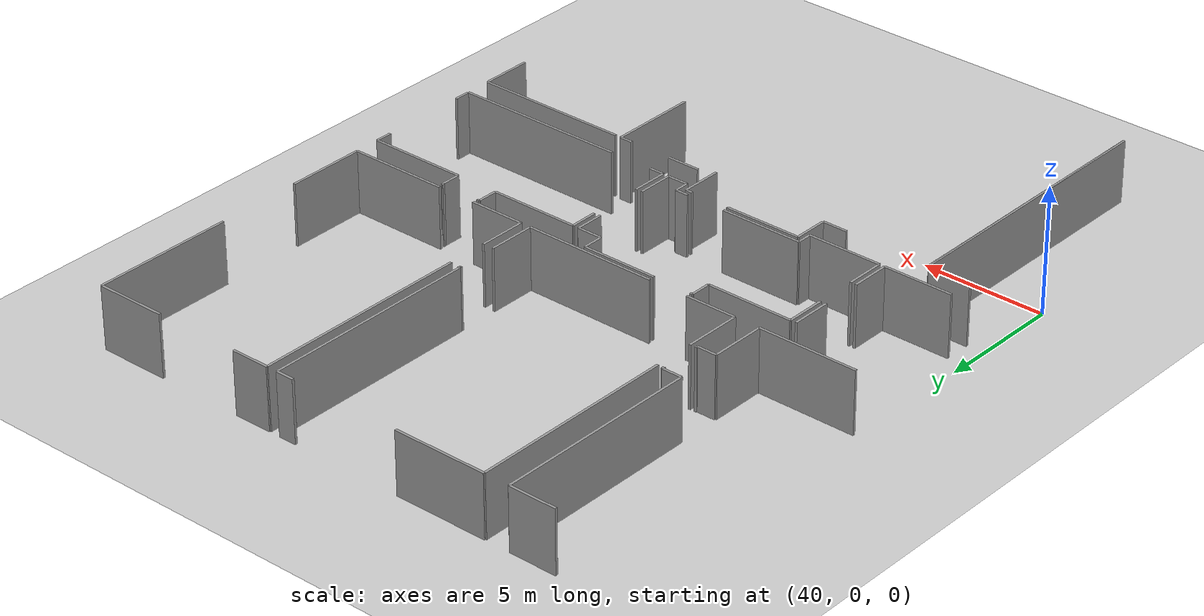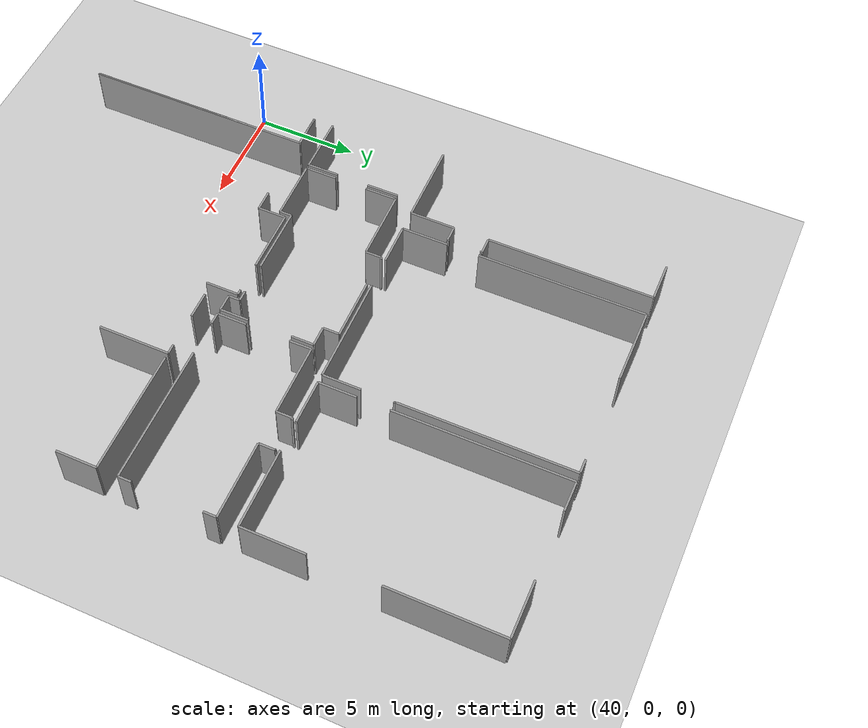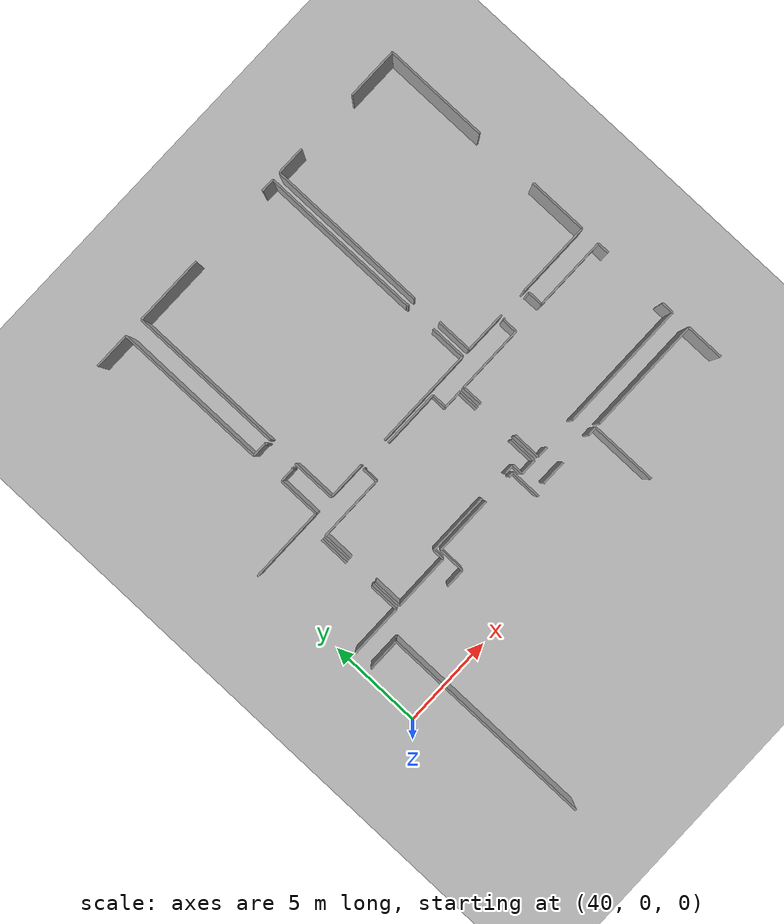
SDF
<sdf version="1.6">
 <world name="default">
  <model name="ground_plane">
   <static>1</static>
   <link name="link">
    <collision name="collision">
     <geometry><plane><normal>0 0 1</normal><size>100 100</size></plane></geometry>
     <surface><friction><ode><mu>100</mu><mu2>50</mu2></ode></friction></surface>
    </collision>
    <visual name="visual">
     <cast_shadows>0</cast_shadows>
     <geometry><plane><normal>0 0 1</normal><size>100 100</size></plane></geometry>
     <material>
      <script><uri>file://media/materials/scripts/gazebo.material</uri><name>Gazebo/Grey</name></script>
     </material>
    </visual>
   </link>
  </model>
  <model name="50010540">
   <static>1</static>
   <link name="Wall_172">
    <collision name="Wall_172_Collision">
     <geometry><box><size>1.92822233662 0.1 2.5</size></box></geometry>
     <pose>0.96411116831 0 1.25 0 0 0</pose>
    </collision>
    <visual name="Wall_172_Visual">
     <pose>0.96411116831 0 1.25 0 0 0</pose>
     <geometry><box><size>1.92822233662 0.1 2.5</size></box></geometry>
     <material>
      <script><uri>file://media/materials/scripts/gazebo.material</uri><name>Gazebo/Grey</name></script>
      <ambient>1 1 1 1</ambient>
     </material>
    </visual>
    <pose>104.788143403 -0.456443402162 0 0 0 0.0</pose>
   </link>
   <link name="Wall_173">
    <collision name="Wall_173_Collision">
     <geometry><box><size>8.22259083427 0.1 2.5</size></box></geometry>
     <pose>4.11129541714 0 1.25 0 0 0</pose>
    </collision>
    <visual name="Wall_173_Visual">
     <pose>4.11129541714 0 1.25 0 0 0</pose>
     <geometry><box><size>8.22259083427 0.1 2.5</size></box></geometry>
     <material>
      <script><uri>file://media/materials/scripts/gazebo.material</uri><name>Gazebo/Grey</name></script>
      <ambient>1 1 1 1</ambient>
     </material>
    </visual>
    <pose>106.716365739 -0.456443402162 0 0 0 -1.57079632679</pose>
   </link>
   <link name="Wall_174">
    <collision name="Wall_174_Collision">
     <geometry><box><size>0.808404354706 0.1 2.5</size></box></geometry>
     <pose>0.404202177353 0 1.25 0 0 0</pose>
    </collision>
    <visual name="Wall_174_Visual">
     <pose>0.404202177353 0 1.25 0 0 0</pose>
     <geometry><box><size>0.808404354706 0.1 2.5</size></box></geometry>
     <material>
      <script><uri>file://media/materials/scripts/gazebo.material</uri><name>Gazebo/Grey</name></script>
      <ambient>1 1 1 1</ambient>
     </material>
    </visual>
    <pose>106.716365739 -8.67903423643 0 0 0 0.0</pose>
   </link>
   <link name="Wall_175">
    <collision name="Wall_175_Collision">
     <geometry><box><size>0.0997794683089 0.1 2.5</size></box></geometry>
     <pose>0.0498897341544 0 1.25 0 0 0</pose>
    </collision>
    <visual name="Wall_175_Visual">
     <pose>0.0498897341544 0 1.25 0 0 0</pose>
     <geometry><box><size>0.0997794683089 0.1 2.5</size></box></geometry>
     <material>
      <script><uri>file://media/materials/scripts/gazebo.material</uri><name>Gazebo/Grey</name></script>
      <ambient>1 1 1 1</ambient>
     </material>
    </visual>
    <pose>107.524770094 -8.67903423643 0 0 0 -1.57079632679</pose>
   </link>
   <link name="Wall_176">
    <collision name="Wall_176_Collision">
     <geometry><box><size>0.0845265559559 0.1 2.5</size></box></geometry>
     <pose>0.042263277978 0 1.25 0 0 0</pose>
    </collision>
    <visual name="Wall_176_Visual">
     <pose>0.042263277978 0 1.25 0 0 0</pose>
     <geometry><box><size>0.0845265559559 0.1 2.5</size></box></geometry>
     <material>
      <script><uri>file://media/materials/scripts/gazebo.material</uri><name>Gazebo/Grey</name></script>
      <ambient>1 1 1 1</ambient>
     </material>
    </visual>
    <pose>107.524770094 -10.3604136081 0 0 0 -1.57079632679</pose>
   </link>
   <link name="Wall_177">
    <collision name="Wall_177_Collision">
     <geometry><box><size>0.793151442354 0.1 2.5</size></box></geometry>
     <pose>0.396575721177 0 1.25 0 0 0</pose>
    </collision>
    <visual name="Wall_177_Visual">
     <pose>0.396575721177 0 1.25 0 0 0</pose>
     <geometry><box><size>0.793151442354 0.1 2.5</size></box></geometry>
     <material>
      <script><uri>file://media/materials/scripts/gazebo.material</uri><name>Gazebo/Grey</name></script>
      <ambient>1 1 1 1</ambient>
     </material>
    </visual>
    <pose>107.524770094 -10.4449401641 0 0 0 3.14159265359</pose>
   </link>
   <link name="Wall_178">
    <collision name="Wall_178_Collision">
     <geometry><box><size>2.21434155084 0.1 2.5</size></box></geometry>
     <pose>1.10717077542 0 1.25 0 0 0</pose>
    </collision>
    <visual name="Wall_178_Visual">
     <pose>1.10717077542 0 1.25 0 0 0</pose>
     <geometry><box><size>2.21434155084 0.1 2.5</size></box></geometry>
     <material>
      <script><uri>file://media/materials/scripts/gazebo.material</uri><name>Gazebo/Grey</name></script>
      <ambient>1 1 1 1</ambient>
     </material>
    </visual>
    <pose>106.731618652 -10.4449401641 0 0 0 -1.57079632679</pose>
   </link>
   <link name="Wall_179">
    <collision name="Wall_179_Collision">
     <geometry><box><size>4.01011776519 0.1 2.5</size></box></geometry>
     <pose>2.0050588826 0 1.25 0 0 0</pose>
    </collision>
    <visual name="Wall_179_Visual">
     <pose>2.0050588826 0 1.25 0 0 0</pose>
     <geometry><box><size>4.01011776519 0.1 2.5</size></box></geometry>
     <material>
      <script><uri>file://media/materials/scripts/gazebo.material</uri><name>Gazebo/Grey</name></script>
      <ambient>1 1 1 1</ambient>
     </material>
    </visual>
    <pose>106.731618652 -12.6592817149 0 0 0 3.14159265359</pose>
   </link>
   <link name="Wall_193">
    <collision name="Wall_193_Collision">
     <geometry><box><size>1.58668420752 0.1 2.5</size></box></geometry>
     <pose>0.793342103758 0 1.25 0 0 0</pose>
    </collision>
    <visual name="Wall_193_Visual">
     <pose>0.793342103758 0 1.25 0 0 0</pose>
     <geometry><box><size>1.58668420752 0.1 2.5</size></box></geometry>
     <material>
      <script><uri>file://media/materials/scripts/gazebo.material</uri><name>Gazebo/Grey</name></script>
      <ambient>1 1 1 1</ambient>
     </material>
    </visual>
    <pose>106.023629303 -13.6954628941 0 0 0 -1.57079632679</pose>
   </link>
   <link name="Wall_194">
    <collision name="Wall_194_Collision">
     <geometry><box><size>1.57219394078 0.1 2.5</size></box></geometry>
     <pose>0.78609697039 0 1.25 0 0 0</pose>
    </collision>
    <visual name="Wall_194_Visual">
     <pose>0.78609697039 0 1.25 0 0 0</pose>
     <geometry><box><size>1.57219394078 0.1 2.5</size></box></geometry>
     <material>
      <script><uri>file://media/materials/scripts/gazebo.material</uri><name>Gazebo/Grey</name></script>
      <ambient>1 1 1 1</ambient>
     </material>
    </visual>
    <pose>106.023629303 -16.8876432344 0 0 0 -1.57079632679</pose>
   </link>
   <link name="Wall_195">
    <collision name="Wall_195_Collision">
     <geometry><box><size>2.79738412553 0.1 2.5</size></box></geometry>
     <pose>1.39869206277 0 1.25 0 0 0</pose>
    </collision>
    <visual name="Wall_195_Visual">
     <pose>1.39869206277 0 1.25 0 0 0</pose>
     <geometry><box><size>2.79738412553 0.1 2.5</size></box></geometry>
     <material>
      <script><uri>file://media/materials/scripts/gazebo.material</uri><name>Gazebo/Grey</name></script>
      <ambient>1 1 1 1</ambient>
     </material>
    </visual>
    <pose>106.023629303 -18.4598371752 0 0 0 3.14159265359</pose>
   </link>
   <link name="Wall_199">
    <collision name="Wall_199_Collision">
     <geometry><box><size>3.77509580736 0.1 2.5</size></box></geometry>
     <pose>1.88754790368 0 1.25 0 0 0</pose>
    </collision>
    <visual name="Wall_199_Visual">
     <pose>1.88754790368 0 1.25 0 0 0</pose>
     <geometry><box><size>3.77509580736 0.1 2.5</size></box></geometry>
     <material>
      <script><uri>file://media/materials/scripts/gazebo.material</uri><name>Gazebo/Grey</name></script>
      <ambient>1 1 1 1</ambient>
     </material>
    </visual>
    <pose>107.761190236 -0.458731339015 0 0 0 0.0</pose>
   </link>
   <link name="Wall_200">
    <collision name="Wall_200_Collision">
     <geometry><box><size>0.724513336765 0.1 2.5</size></box></geometry>
     <pose>0.362256668383 0 1.25 0 0 0</pose>
    </collision>
    <visual name="Wall_200_Visual">
     <pose>0.362256668383 0 1.25 0 0 0</pose>
     <geometry><box><size>0.724513336765 0.1 2.5</size></box></geometry>
     <material>
      <script><uri>file://media/materials/scripts/gazebo.material</uri><name>Gazebo/Grey</name></script>
      <ambient>1 1 1 1</ambient>
     </material>
    </visual>
    <pose>116.068943164 -0.458731339015 0 0 0 0.0</pose>
   </link>
   <link name="Wall_201">
    <collision name="Wall_201_Collision">
     <geometry><box><size>8.61637018818 0.1 2.5</size></box></geometry>
     <pose>4.30818509409 0 1.25 0 0 0</pose>
    </collision>
    <visual name="Wall_201_Visual">
     <pose>4.30818509409 0 1.25 0 0 0</pose>
     <geometry><box><size>8.61637018818 0.1 2.5</size></box></geometry>
     <material>
      <script><uri>file://media/materials/scripts/gazebo.material</uri><name>Gazebo/Grey</name></script>
      <ambient>1 1 1 1</ambient>
     </material>
    </visual>
    <pose>116.793456501 -0.458731339015 0 0 0 -1.57079632679</pose>
   </link>
   <link name="Wall_202">
    <collision name="Wall_202_Collision">
     <geometry><box><size>0.0190661404412 0.1 2.5</size></box></geometry>
     <pose>0.00953307022058 0 1.25 0 0 0</pose>
    </collision>
    <visual name="Wall_202_Visual">
     <pose>0.00953307022058 0 1.25 0 0 0</pose>
     <geometry><box><size>0.0190661404412 0.1 2.5</size></box></geometry>
     <material>
      <script><uri>file://media/materials/scripts/gazebo.material</uri><name>Gazebo/Grey</name></script>
      <ambient>1 1 1 1</ambient>
     </material>
    </visual>
    <pose>116.793456501 -9.0751015272 0 0 0 0.0</pose>
   </link>
   <link name="Wall_203">
    <collision name="Wall_203_Collision">
     <geometry><box><size>0.109312538529 0.1 2.5</size></box></geometry>
     <pose>0.0546562692647 0 1.25 0 0 0</pose>
    </collision>
    <visual name="Wall_203_Visual">
     <pose>0.0546562692647 0 1.25 0 0 0</pose>
     <geometry><box><size>0.109312538529 0.1 2.5</size></box></geometry>
     <material>
      <script><uri>file://media/materials/scripts/gazebo.material</uri><name>Gazebo/Grey</name></script>
      <ambient>1 1 1 1</ambient>
     </material>
    </visual>
    <pose>116.812522641 -9.0751015272 0 0 0 -1.57079632679</pose>
   </link>
   <link name="Wall_204">
    <collision name="Wall_204_Collision">
     <geometry><box><size>1.89644543588 0.1 2.5</size></box></geometry>
     <pose>0.948222717942 0 1.25 0 0 0</pose>
    </collision>
    <visual name="Wall_204_Visual">
     <pose>0.948222717942 0 1.25 0 0 0</pose>
     <geometry><box><size>1.89644543588 0.1 2.5</size></box></geometry>
     <material>
      <script><uri>file://media/materials/scripts/gazebo.material</uri><name>Gazebo/Grey</name></script>
      <ambient>1 1 1 1</ambient>
     </material>
    </visual>
    <pose>116.812522641 -10.7591501586 0 0 0 -1.57079632679</pose>
   </link>
   <link name="Wall_205">
    <collision name="Wall_205_Collision">
     <geometry><box><size>5.37919375647 0.1 2.5</size></box></geometry>
     <pose>2.68959687824 0 1.25 0 0 0</pose>
    </collision>
    <visual name="Wall_205_Visual">
     <pose>2.68959687824 0 1.25 0 0 0</pose>
     <geometry><box><size>5.37919375647 0.1 2.5</size></box></geometry>
     <material>
      <script><uri>file://media/materials/scripts/gazebo.material</uri><name>Gazebo/Grey</name></script>
      <ambient>1 1 1 1</ambient>
     </material>
    </visual>
    <pose>116.812522641 -12.6555955945 0 0 0 3.14159265359</pose>
   </link>
   <link name="Wall_206">
    <collision name="Wall_206_Collision">
     <geometry><box><size>2.05914316765 0.1 2.5</size></box></geometry>
     <pose>1.02957158382 0 1.25 0 0 0</pose>
    </collision>
    <visual name="Wall_206_Visual">
     <pose>1.02957158382 0 1.25 0 0 0</pose>
     <geometry><box><size>2.05914316765 0.1 2.5</size></box></geometry>
     <material>
      <script><uri>file://media/materials/scripts/gazebo.material</uri><name>Gazebo/Grey</name></script>
      <ambient>1 1 1 1</ambient>
     </material>
    </visual>
    <pose>109.831773088 -12.6555955945 0 0 0 3.14159265359</pose>
   </link>
   <link name="Wall_207">
    <collision name="Wall_207_Collision">
     <geometry><box><size>2.30306265769 0.1 2.5</size></box></geometry>
     <pose>1.15153132885 0 1.25 0 0 0</pose>
    </collision>
    <visual name="Wall_207_Visual">
     <pose>1.15153132885 0 1.25 0 0 0</pose>
     <geometry><box><size>2.30306265769 0.1 2.5</size></box></geometry>
     <material>
      <script><uri>file://media/materials/scripts/gazebo.material</uri><name>Gazebo/Grey</name></script>
      <ambient>1 1 1 1</ambient>
     </material>
    </visual>
    <pose>107.77262992 -12.6555955945 0 0 0 1.57079632679</pose>
   </link>
   <link name="Wall_208">
    <collision name="Wall_208_Collision">
     <geometry><box><size>8.29454162624 0.1 2.5</size></box></geometry>
     <pose>4.14727081312 0 1.25 0 0 0</pose>
    </collision>
    <visual name="Wall_208_Visual">
     <pose>4.14727081312 0 1.25 0 0 0</pose>
     <geometry><box><size>8.29454162624 0.1 2.5</size></box></geometry>
     <material>
      <script><uri>file://media/materials/scripts/gazebo.material</uri><name>Gazebo/Grey</name></script>
      <ambient>1 1 1 1</ambient>
     </material>
    </visual>
    <pose>107.77262992 -8.75326507655 0 0 0 1.57217550944</pose>
   </link>
   <link name="Wall_209">
    <collision name="Wall_209_Collision">
     <geometry><box><size>1.90470743007 0.1 2.5</size></box></geometry>
     <pose>0.952353715037 0 1.25 0 0 0</pose>
    </collision>
    <visual name="Wall_209_Visual">
     <pose>0.952353715037 0 1.25 0 0 0</pose>
     <geometry><box><size>1.90470743007 0.1 2.5</size></box></geometry>
     <material>
      <script><uri>file://media/materials/scripts/gazebo.material</uri><name>Gazebo/Grey</name></script>
      <ambient>1 1 1 1</ambient>
     </material>
    </visual>
    <pose>117.244688491 -12.6576293161 0 0 0 1.57079632679</pose>
   </link>
   <link name="Wall_210">
    <collision name="Wall_210_Collision">
     <geometry><box><size>8.70420154182 0.1 2.5</size></box></geometry>
     <pose>4.35210077091 0 1.25 0 0 0</pose>
    </collision>
    <visual name="Wall_210_Visual">
     <pose>4.35210077091 0 1.25 0 0 0</pose>
     <geometry><box><size>8.70420154182 0.1 2.5</size></box></geometry>
     <material>
      <script><uri>file://media/materials/scripts/gazebo.material</uri><name>Gazebo/Grey</name></script>
      <ambient>1 1 1 1</ambient>
     </material>
    </visual>
    <pose>117.244688491 -9.15645039308 0 0 0 1.57079632679</pose>
   </link>
   <link name="Wall_211">
    <collision name="Wall_211_Collision">
     <geometry><box><size>1.52910446338 0.1 2.5</size></box></geometry>
     <pose>0.764552231692 0 1.25 0 0 0</pose>
    </collision>
    <visual name="Wall_211_Visual">
     <pose>0.764552231692 0 1.25 0 0 0</pose>
     <geometry><box><size>1.52910446338 0.1 2.5</size></box></geometry>
     <material>
      <script><uri>file://media/materials/scripts/gazebo.material</uri><name>Gazebo/Grey</name></script>
      <ambient>1 1 1 1</ambient>
     </material>
    </visual>
    <pose>117.244688491 -0.452248851265 0 0 0 0.0</pose>
   </link>
   <link name="Wall_212">
    <collision name="Wall_212_Collision">
     <geometry><box><size>2.79890941677 0.1 2.5</size></box></geometry>
     <pose>1.39945470838 0 1.25 0 0 0</pose>
    </collision>
    <visual name="Wall_212_Visual">
     <pose>1.39945470838 0 1.25 0 0 0</pose>
     <geometry><box><size>2.79890941677 0.1 2.5</size></box></geometry>
     <material>
      <script><uri>file://media/materials/scripts/gazebo.material</uri><name>Gazebo/Grey</name></script>
      <ambient>1 1 1 1</ambient>
     </material>
    </visual>
    <pose>122.236204059 -0.452248851265 0 0 0 0.0</pose>
   </link>
   <link name="Wall_213">
    <collision name="Wall_213_Collision">
     <geometry><box><size>5.63442582318 0.1 2.5</size></box></geometry>
     <pose>2.81721291159 0 1.25 0 0 0</pose>
    </collision>
    <visual name="Wall_213_Visual">
     <pose>2.81721291159 0 1.25 0 0 0</pose>
     <geometry><box><size>5.63442582318 0.1 2.5</size></box></geometry>
     <material>
      <script><uri>file://media/materials/scripts/gazebo.material</uri><name>Gazebo/Grey</name></script>
      <ambient>1 1 1 1</ambient>
     </material>
    </visual>
    <pose>125.035113475 -0.452248851265 0 0 0 -1.57079632679</pose>
   </link>
   <link name="Wall_214">
    <collision name="Wall_214_Collision">
     <geometry><box><size>3.15074326171 0.1 2.5</size></box></geometry>
     <pose>1.57537163085 0 1.25 0 0 0</pose>
    </collision>
    <visual name="Wall_214_Visual">
     <pose>1.57537163085 0 1.25 0 0 0</pose>
     <geometry><box><size>3.15074326171 0.1 2.5</size></box></geometry>
     <material>
      <script><uri>file://media/materials/scripts/gazebo.material</uri><name>Gazebo/Grey</name></script>
      <ambient>1 1 1 1</ambient>
     </material>
    </visual>
    <pose>125.035113475 -9.5115890357 0 0 0 -1.57079632679</pose>
   </link>
   <link name="Wall_215">
    <collision name="Wall_215_Collision">
     <geometry><box><size>3.98736550427 0.1 2.5</size></box></geometry>
     <pose>1.99368275213 0 1.25 0 0 0</pose>
    </collision>
    <visual name="Wall_215_Visual">
     <pose>1.99368275213 0 1.25 0 0 0</pose>
     <geometry><box><size>3.98736550427 0.1 2.5</size></box></geometry>
     <material>
      <script><uri>file://media/materials/scripts/gazebo.material</uri><name>Gazebo/Grey</name></script>
      <ambient>1 1 1 1</ambient>
     </material>
    </visual>
    <pose>125.035113475 -12.6623322974 0 0 0 3.14159265359</pose>
   </link>
   <link name="Wall_216">
    <collision name="Wall_216_Collision">
     <geometry><box><size>2.22693016957 0.1 2.5</size></box></geometry>
     <pose>1.11346508479 0 1.25 0 0 0</pose>
    </collision>
    <visual name="Wall_216_Visual">
     <pose>1.11346508479 0 1.25 0 0 0</pose>
     <geometry><box><size>2.22693016957 0.1 2.5</size></box></geometry>
     <material>
      <script><uri>file://media/materials/scripts/gazebo.material</uri><name>Gazebo/Grey</name></script>
      <ambient>1 1 1 1</ambient>
     </material>
    </visual>
    <pose>119.471613695 -12.6623322974 0 0 0 3.13948078458</pose>
   </link>
   <link name="Wall_217">
    <collision name="Wall_217_Collision">
     <geometry><box><size>1.57689692209 0.1 2.5</size></box></geometry>
     <pose>0.788448461045 0 1.25 0 0 0</pose>
    </collision>
    <visual name="Wall_217_Visual">
     <pose>0.788448461045 0 1.25 0 0 0</pose>
     <geometry><box><size>1.57689692209 0.1 2.5</size></box></geometry>
     <material>
      <script><uri>file://media/materials/scripts/gazebo.material</uri><name>Gazebo/Grey</name></script>
      <ambient>1 1 1 1</ambient>
     </material>
    </visual>
    <pose>106.252422989 -18.461489574 0 0 0 1.57079632679</pose>
   </link>
   <link name="Wall_218">
    <collision name="Wall_218_Collision">
     <geometry><box><size>1.58350651744 0.1 2.5</size></box></geometry>
     <pose>0.791753258721 0 1.25 0 0 0</pose>
    </collision>
    <visual name="Wall_218_Visual">
     <pose>0.791753258721 0 1.25 0 0 0</pose>
     <geometry><box><size>1.58350651744 0.1 2.5</size></box></geometry>
     <material>
      <script><uri>file://media/materials/scripts/gazebo.material</uri><name>Gazebo/Grey</name></script>
      <ambient>1 1 1 1</ambient>
     </material>
    </visual>
    <pose>106.252422989 -15.2759188291 0 0 0 1.57079632679</pose>
   </link>
   <link name="Wall_219">
    <collision name="Wall_219_Collision">
     <geometry><box><size>3.50435661309 0.1 2.5</size></box></geometry>
     <pose>1.75217830655 0 1.25 0 0 0</pose>
    </collision>
    <visual name="Wall_219_Visual">
     <pose>1.75217830655 0 1.25 0 0 0</pose>
     <geometry><box><size>3.50435661309 0.1 2.5</size></box></geometry>
     <material>
      <script><uri>file://media/materials/scripts/gazebo.material</uri><name>Gazebo/Grey</name></script>
      <ambient>1 1 1 1</ambient>
     </material>
    </visual>
    <pose>106.252422989 -13.6924123116 0 0 0 0.0</pose>
   </link>
   <link name="Wall_220">
    <collision name="Wall_220_Collision">
     <geometry><box><size>0.816920564104 0.1 2.5</size></box></geometry>
     <pose>0.408460282052 0 1.25 0 0 0</pose>
    </collision>
    <visual name="Wall_220_Visual">
     <pose>0.408460282052 0 1.25 0 0 0</pose>
     <geometry><box><size>0.816920564104 0.1 2.5</size></box></geometry>
     <material>
      <script><uri>file://media/materials/scripts/gazebo.material</uri><name>Gazebo/Grey</name></script>
      <ambient>1 1 1 1</ambient>
     </material>
    </visual>
    <pose>109.756779602 -13.6924123116 0 0 0 1.57079632679</pose>
   </link>
   <link name="Wall_221">
    <collision name="Wall_221_Collision">
     <geometry><box><size>0.102957158382 0.1 2.5</size></box></geometry>
     <pose>0.0514785791912 0 1.25 0 0 0</pose>
    </collision>
    <visual name="Wall_221_Visual">
     <pose>0.0514785791912 0 1.25 0 0 0</pose>
     <geometry><box><size>0.102957158382 0.1 2.5</size></box></geometry>
     <material>
      <script><uri>file://media/materials/scripts/gazebo.material</uri><name>Gazebo/Grey</name></script>
      <ambient>1 1 1 1</ambient>
     </material>
    </visual>
    <pose>109.756779602 -12.8754917475 0 0 0 0.0</pose>
   </link>
   <link name="Wall_222">
    <collision name="Wall_222_Collision">
     <geometry><box><size>3.06329323088 0.1 2.5</size></box></geometry>
     <pose>1.53164661544 0 1.25 0 0 0</pose>
    </collision>
    <visual name="Wall_222_Visual">
     <pose>1.53164661544 0 1.25 0 0 0</pose>
     <geometry><box><size>3.06329323088 0.1 2.5</size></box></geometry>
     <material>
      <script><uri>file://media/materials/scripts/gazebo.material</uri><name>Gazebo/Grey</name></script>
      <ambient>1 1 1 1</ambient>
     </material>
    </visual>
    <pose>111.454937177 -12.8754917475 0 0 0 0.0</pose>
   </link>
   <link name="Wall_223">
    <collision name="Wall_223_Collision">
     <geometry><box><size>0.816539241295 0.1 2.5</size></box></geometry>
     <pose>0.408269620647 0 1.25 0 0 0</pose>
    </collision>
    <visual name="Wall_223_Visual">
     <pose>0.408269620647 0 1.25 0 0 0</pose>
     <geometry><box><size>0.816539241295 0.1 2.5</size></box></geometry>
     <material>
      <script><uri>file://media/materials/scripts/gazebo.material</uri><name>Gazebo/Grey</name></script>
      <ambient>1 1 1 1</ambient>
     </material>
    </visual>
    <pose>114.518230408 -12.8754917475 0 0 0 -1.57079632679</pose>
   </link>
   <link name="Wall_224">
    <collision name="Wall_224_Collision">
     <geometry><box><size>1.00160791118 0.1 2.5</size></box></geometry>
     <pose>0.500803955589 0 1.25 0 0 0</pose>
    </collision>
    <visual name="Wall_224_Visual">
     <pose>0.500803955589 0 1.25 0 0 0</pose>
     <geometry><box><size>1.00160791118 0.1 2.5</size></box></geometry>
     <material>
      <script><uri>file://media/materials/scripts/gazebo.material</uri><name>Gazebo/Grey</name></script>
      <ambient>1 1 1 1</ambient>
     </material>
    </visual>
    <pose>114.518230408 -13.6920309888 0 0 0 0.0</pose>
   </link>
   <link name="Wall_225">
    <collision name="Wall_225_Collision">
     <geometry><box><size>1.12515650124 0.1 2.5</size></box></geometry>
     <pose>0.562578250618 0 1.25 0 0 0</pose>
    </collision>
    <visual name="Wall_225_Visual">
     <pose>0.562578250618 0 1.25 0 0 0</pose>
     <geometry><box><size>1.12515650124 0.1 2.5</size></box></geometry>
     <material>
      <script><uri>file://media/materials/scripts/gazebo.material</uri><name>Gazebo/Grey</name></script>
      <ambient>1 1 1 1</ambient>
     </material>
    </visual>
    <pose>115.519838319 -13.6920309888 0 0 0 -1.57079632679</pose>
   </link>
   <link name="Wall_226">
    <collision name="Wall_226_Collision">
     <geometry><box><size>1.44470501503 0.1 2.5</size></box></geometry>
     <pose>0.722352507515 0 1.25 0 0 0</pose>
    </collision>
    <visual name="Wall_226_Visual">
     <pose>0.722352507515 0 1.25 0 0 0</pose>
     <geometry><box><size>1.44470501503 0.1 2.5</size></box></geometry>
     <material>
      <script><uri>file://media/materials/scripts/gazebo.material</uri><name>Gazebo/Grey</name></script>
      <ambient>1 1 1 1</ambient>
     </material>
    </visual>
    <pose>115.519838319 -16.9982268489 0 0 0 -1.57079632679</pose>
   </link>
   <link name="Wall_227">
    <collision name="Wall_227_Collision">
     <geometry><box><size>0.833825875295 0.1 2.5</size></box></geometry>
     <pose>0.416912937647 0 1.25 0 0 0</pose>
    </collision>
    <visual name="Wall_227_Visual">
     <pose>0.416912937647 0 1.25 0 0 0</pose>
     <geometry><box><size>0.833825875295 0.1 2.5</size></box></geometry>
     <material>
      <script><uri>file://media/materials/scripts/gazebo.material</uri><name>Gazebo/Grey</name></script>
      <ambient>1 1 1 1</ambient>
     </material>
    </visual>
    <pose>115.519838319 -18.442931864 0 0 0 3.14159265359</pose>
   </link>
   <link name="Wall_228">
    <collision name="Wall_228_Collision">
     <geometry><box><size>0.578085378177 0.1 2.5</size></box></geometry>
     <pose>0.289042689088 0 1.25 0 0 0</pose>
    </collision>
    <visual name="Wall_228_Visual">
     <pose>0.289042689088 0 1.25 0 0 0</pose>
     <geometry><box><size>0.578085378177 0.1 2.5</size></box></geometry>
     <material>
      <script><uri>file://media/materials/scripts/gazebo.material</uri><name>Gazebo/Grey</name></script>
      <ambient>1 1 1 1</ambient>
     </material>
    </visual>
    <pose>114.686012444 -18.442931864 0 0 0 1.57079632679</pose>
   </link>
   <link name="Wall_229">
    <collision name="Wall_229_Collision">
     <geometry><box><size>0.537665160442 0.1 2.5</size></box></geometry>
     <pose>0.268832580221 0 1.25 0 0 0</pose>
    </collision>
    <visual name="Wall_229_Visual">
     <pose>0.268832580221 0 1.25 0 0 0</pose>
     <geometry><box><size>0.537665160442 0.1 2.5</size></box></geometry>
     <material>
      <script><uri>file://media/materials/scripts/gazebo.material</uri><name>Gazebo/Grey</name></script>
      <ambient>1 1 1 1</ambient>
     </material>
    </visual>
    <pose>114.686012444 -17.8648464858 0 0 0 3.14159265359</pose>
   </link>
   <link name="Wall_230">
    <collision name="Wall_230_Collision">
     <geometry><box><size>3.3187795128 0.1 2.5</size></box></geometry>
     <pose>1.6593897564 0 1.25 0 0 0</pose>
    </collision>
    <visual name="Wall_230_Visual">
     <pose>1.6593897564 0 1.25 0 0 0</pose>
     <geometry><box><size>3.3187795128 0.1 2.5</size></box></geometry>
     <material>
      <script><uri>file://media/materials/scripts/gazebo.material</uri><name>Gazebo/Grey</name></script>
      <ambient>1 1 1 1</ambient>
     </material>
    </visual>
    <pose>112.55187579 -17.8648464858 0 0 0 3.14159265359</pose>
   </link>
   <link name="Wall_231">
    <collision name="Wall_231_Collision">
     <geometry><box><size>0.592321429706 0.1 2.5</size></box></geometry>
     <pose>0.296160714853 0 1.25 0 0 0</pose>
    </collision>
    <visual name="Wall_231_Visual">
     <pose>0.296160714853 0 1.25 0 0 0</pose>
     <geometry><box><size>0.592321429706 0.1 2.5</size></box></geometry>
     <material>
      <script><uri>file://media/materials/scripts/gazebo.material</uri><name>Gazebo/Grey</name></script>
      <ambient>1 1 1 1</ambient>
     </material>
    </visual>
    <pose>109.233096278 -17.8648464858 0 0 0 -1.57079632679</pose>
   </link>
   <link name="Wall_232">
    <collision name="Wall_232_Collision">
     <geometry><box><size>2.98067642194 0.1 2.5</size></box></geometry>
     <pose>1.49033821097 0 1.25 0 0 0</pose>
    </collision>
    <visual name="Wall_232_Visual">
     <pose>1.49033821097 0 1.25 0 0 0</pose>
     <geometry><box><size>2.98067642194 0.1 2.5</size></box></geometry>
     <material>
      <script><uri>file://media/materials/scripts/gazebo.material</uri><name>Gazebo/Grey</name></script>
      <ambient>1 1 1 1</ambient>
     </material>
    </visual>
    <pose>109.233096278 -18.4571679155 0 0 0 -3.14014276122</pose>
   </link>
   <link name="Wall_233">
    <collision name="Wall_233_Collision">
     <geometry><box><size>3.59841623927 0.1 2.5</size></box></geometry>
     <pose>1.79920811963 0 1.25 0 0 0</pose>
    </collision>
    <visual name="Wall_233_Visual">
     <pose>1.79920811963 0 1.25 0 0 0</pose>
     <geometry><box><size>3.59841623927 0.1 2.5</size></box></geometry>
     <material>
      <script><uri>file://media/materials/scripts/gazebo.material</uri><name>Gazebo/Grey</name></script>
      <ambient>1 1 1 1</ambient>
     </material>
    </visual>
    <pose>115.768969221 -13.6864382543 0 0 0 0.0</pose>
   </link>
   <link name="Wall_234">
    <collision name="Wall_234_Collision">
     <geometry><box><size>0.804718234221 0.1 2.5</size></box></geometry>
     <pose>0.402359117111 0 1.25 0 0 0</pose>
    </collision>
    <visual name="Wall_234_Visual">
     <pose>0.402359117111 0 1.25 0 0 0</pose>
     <geometry><box><size>0.804718234221 0.1 2.5</size></box></geometry>
     <material>
      <script><uri>file://media/materials/scripts/gazebo.material</uri><name>Gazebo/Grey</name></script>
      <ambient>1 1 1 1</ambient>
     </material>
    </visual>
    <pose>119.36738546 -13.6864382543 0 0 0 1.57079632679</pose>
   </link>
   <link name="Wall_235">
    <collision name="Wall_235_Collision">
     <geometry><box><size>0.100415006324 0.1 2.5</size></box></geometry>
     <pose>0.0502075031618 0 1.25 0 0 0</pose>
    </collision>
    <visual name="Wall_235_Visual">
     <pose>0.0502075031618 0 1.25 0 0 0</pose>
     <geometry><box><size>0.100415006324 0.1 2.5</size></box></geometry>
     <material>
      <script><uri>file://media/materials/scripts/gazebo.material</uri><name>Gazebo/Grey</name></script>
      <ambient>1 1 1 1</ambient>
     </material>
    </visual>
    <pose>119.36738546 -12.8817200201 0 0 0 0.0</pose>
   </link>
   <link name="Wall_236">
    <collision name="Wall_236_Collision">
     <geometry><box><size>0.0622827254412 0.1 2.5</size></box></geometry>
     <pose>0.0311413627206 0 1.25 0 0 0</pose>
    </collision>
    <visual name="Wall_236_Visual">
     <pose>0.0311413627206 0 1.25 0 0 0</pose>
     <geometry><box><size>0.0622827254412 0.1 2.5</size></box></geometry>
     <material>
      <script><uri>file://media/materials/scripts/gazebo.material</uri><name>Gazebo/Grey</name></script>
      <ambient>1 1 1 1</ambient>
     </material>
    </visual>
    <pose>121.064271959 -12.8817200201 0 0 0 0.0</pose>
   </link>
   <link name="Wall_237">
    <collision name="Wall_237_Collision">
     <geometry><box><size>0.807641709089 0.1 2.5</size></box></geometry>
     <pose>0.403820854544 0 1.25 0 0 0</pose>
    </collision>
    <visual name="Wall_237_Visual">
     <pose>0.403820854544 0 1.25 0 0 0</pose>
     <geometry><box><size>0.807641709089 0.1 2.5</size></box></geometry>
     <material>
      <script><uri>file://media/materials/scripts/gazebo.material</uri><name>Gazebo/Grey</name></script>
      <ambient>1 1 1 1</ambient>
     </material>
    </visual>
    <pose>121.126554685 -12.8817200201 0 0 0 -1.57079632679</pose>
   </link>
   <link name="Wall_238">
    <collision name="Wall_238_Collision">
     <geometry><box><size>3.90855879044 0.1 2.5</size></box></geometry>
     <pose>1.95427939522 0 1.25 0 0 0</pose>
    </collision>
    <visual name="Wall_238_Visual">
     <pose>1.95427939522 0 1.25 0 0 0</pose>
     <geometry><box><size>3.90855879044 0.1 2.5</size></box></geometry>
     <material>
      <script><uri>file://media/materials/scripts/gazebo.material</uri><name>Gazebo/Grey</name></script>
      <ambient>1 1 1 1</ambient>
     </material>
    </visual>
    <pose>121.126554685 -13.6893617292 0 0 0 0.0</pose>
   </link>
   <link name="Wall_239">
    <collision name="Wall_239_Collision">
     <geometry><box><size>0.653968617133 0.1 2.5</size></box></geometry>
     <pose>0.326984308566 0 1.25 0 0 0</pose>
    </collision>
    <visual name="Wall_239_Visual">
     <pose>0.326984308566 0 1.25 0 0 0</pose>
     <geometry><box><size>0.653968617133 0.1 2.5</size></box></geometry>
     <material>
      <script><uri>file://media/materials/scripts/gazebo.material</uri><name>Gazebo/Grey</name></script>
      <ambient>1 1 1 1</ambient>
     </material>
    </visual>
    <pose>125.035113475 -13.6893617292 0 0 0 -1.57079632679</pose>
   </link>
   <link name="Wall_240">
    <collision name="Wall_240_Collision">
     <geometry><box><size>0.655493908368 0.1 2.5</size></box></geometry>
     <pose>0.327746954184 0 1.25 0 0 0</pose>
    </collision>
    <visual name="Wall_240_Visual">
     <pose>0.327746954184 0 1.25 0 0 0</pose>
     <geometry><box><size>0.655493908368 0.1 2.5</size></box></geometry>
     <material>
      <script><uri>file://media/materials/scripts/gazebo.material</uri><name>Gazebo/Grey</name></script>
      <ambient>1 1 1 1</ambient>
     </material>
    </visual>
    <pose>125.035113475 -17.795954165 0 0 0 -1.57079632679</pose>
   </link>
   <link name="Wall_241">
    <collision name="Wall_241_Collision">
     <geometry><box><size>6.90321391574 0.1 2.5</size></box></geometry>
     <pose>3.45160695787 0 1.25 0 0 0</pose>
    </collision>
    <visual name="Wall_241_Visual">
     <pose>3.45160695787 0 1.25 0 0 0</pose>
     <geometry><box><size>6.90321391574 0.1 2.5</size></box></geometry>
     <material>
      <script><uri>file://media/materials/scripts/gazebo.material</uri><name>Gazebo/Grey</name></script>
      <ambient>1 1 1 1</ambient>
     </material>
    </visual>
    <pose>125.035113475 -18.4514480734 0 0 0 3.14159265359</pose>
   </link>
   <link name="Wall_242">
    <collision name="Wall_242_Collision">
     <geometry><box><size>0.594863581765 0.1 2.5</size></box></geometry>
     <pose>0.297431790883 0 1.25 0 0 0</pose>
    </collision>
    <visual name="Wall_242_Visual">
     <pose>0.297431790883 0 1.25 0 0 0</pose>
     <geometry><box><size>0.594863581765 0.1 2.5</size></box></geometry>
     <material>
      <script><uri>file://media/materials/scripts/gazebo.material</uri><name>Gazebo/Grey</name></script>
      <ambient>1 1 1 1</ambient>
     </material>
    </visual>
    <pose>116.370188183 -18.4514480734 0 0 0 3.14159265359</pose>
   </link>
   <link name="Wall_243">
    <collision name="Wall_243_Collision">
     <geometry><box><size>1.46211875663 0.1 2.5</size></box></geometry>
     <pose>0.731059378317 0 1.25 0 0 0</pose>
    </collision>
    <visual name="Wall_243_Visual">
     <pose>0.731059378317 0 1.25 0 0 0</pose>
     <geometry><box><size>1.46211875663 0.1 2.5</size></box></geometry>
     <material>
      <script><uri>file://media/materials/scripts/gazebo.material</uri><name>Gazebo/Grey</name></script>
      <ambient>1 1 1 1</ambient>
     </material>
    </visual>
    <pose>115.775324601 -18.4514480734 0 0 0 1.57079632679</pose>
   </link>
   <link name="Wall_244">
    <collision name="Wall_244_Collision">
     <geometry><box><size>1.10407493102 0.1 2.5</size></box></geometry>
     <pose>0.552037465509 0 1.25 0 0 0</pose>
    </collision>
    <visual name="Wall_244_Visual">
     <pose>0.552037465509 0 1.25 0 0 0</pose>
     <geometry><box><size>1.10407493102 0.1 2.5</size></box></geometry>
     <material>
      <script><uri>file://media/materials/scripts/gazebo.material</uri><name>Gazebo/Grey</name></script>
      <ambient>1 1 1 1</ambient>
     </material>
    </visual>
    <pose>115.775324601 -14.7904948935 0 0 0 1.57655265281</pose>
   </link>
   <link name="Wall_247">
    <collision name="Wall_247_Collision">
     <geometry><box><size>1.01940297559 0.1 2.5</size></box></geometry>
     <pose>0.509701487794 0 1.25 0 0 0</pose>
    </collision>
    <visual name="Wall_247_Visual">
     <pose>0.509701487794 0 1.25 0 0 0</pose>
     <geometry><box><size>1.01940297559 0.1 2.5</size></box></geometry>
     <material>
      <script><uri>file://media/materials/scripts/gazebo.material</uri><name>Gazebo/Grey</name></script>
      <ambient>1 1 1 1</ambient>
     </material>
    </visual>
    <pose>108.441215911 -19.4840702397 0 0 0 0.0</pose>
   </link>
   <link name="Wall_248">
    <collision name="Wall_248_Collision">
     <geometry><box><size>1.38992163816 0.1 2.5</size></box></geometry>
     <pose>0.694960819081 0 1.25 0 0 0</pose>
    </collision>
    <visual name="Wall_248_Visual">
     <pose>0.694960819081 0 1.25 0 0 0</pose>
     <geometry><box><size>1.38992163816 0.1 2.5</size></box></geometry>
     <material>
      <script><uri>file://media/materials/scripts/gazebo.material</uri><name>Gazebo/Grey</name></script>
      <ambient>1 1 1 1</ambient>
     </material>
    </visual>
    <pose>109.460618887 -19.4840702397 0 0 0 1.57079632679</pose>
   </link>
   <link name="Wall_249">
    <collision name="Wall_249_Collision">
     <geometry><box><size>3.11794950015 0.1 2.5</size></box></geometry>
     <pose>1.55897475007 0 1.25 0 0 0</pose>
    </collision>
    <visual name="Wall_249_Visual">
     <pose>1.55897475007 0 1.25 0 0 0</pose>
     <geometry><box><size>3.11794950015 0.1 2.5</size></box></geometry>
     <material>
      <script><uri>file://media/materials/scripts/gazebo.material</uri><name>Gazebo/Grey</name></script>
      <ambient>1 1 1 1</ambient>
     </material>
    </visual>
    <pose>109.460618887 -18.0941486015 0 0 0 0.0</pose>
   </link>
   <link name="Wall_250">
    <collision name="Wall_250_Collision">
     <geometry><box><size>0.270739194265 0.1 2.5</size></box></geometry>
     <pose>0.135369597132 0 1.25 0 0 0</pose>
    </collision>
    <visual name="Wall_250_Visual">
     <pose>0.135369597132 0 1.25 0 0 0</pose>
     <geometry><box><size>0.270739194265 0.1 2.5</size></box></geometry>
     <material>
      <script><uri>file://media/materials/scripts/gazebo.material</uri><name>Gazebo/Grey</name></script>
      <ambient>1 1 1 1</ambient>
     </material>
    </visual>
    <pose>114.159786968 -18.0941486015 0 0 0 0.0</pose>
   </link>
   <link name="Wall_251">
    <collision name="Wall_251_Collision">
     <geometry><box><size>1.64223023 0.1 2.5</size></box></geometry>
     <pose>0.821115115001 0 1.25 0 0 0</pose>
    </collision>
    <visual name="Wall_251_Visual">
     <pose>0.821115115001 0 1.25 0 0 0</pose>
     <geometry><box><size>1.64223023 0.1 2.5</size></box></geometry>
     <material>
      <script><uri>file://media/materials/scripts/gazebo.material</uri><name>Gazebo/Grey</name></script>
      <ambient>1 1 1 1</ambient>
     </material>
    </visual>
    <pose>114.430526162 -18.0941486015 0 0 0 -1.57079632679</pose>
   </link>
   <link name="Wall_267">
    <collision name="Wall_267_Collision">
     <geometry><box><size>1.70222501859 0.1 2.5</size></box></geometry>
     <pose>0.851112509295 0 1.25 0 0 0</pose>
    </collision>
    <visual name="Wall_267_Visual">
     <pose>0.851112509295 0 1.25 0 0 0</pose>
     <geometry><box><size>1.70222501859 0.1 2.5</size></box></geometry>
     <material>
      <script><uri>file://media/materials/scripts/gazebo.material</uri><name>Gazebo/Grey</name></script>
      <ambient>1 1 1 1</ambient>
     </material>
    </visual>
    <pose>103.223194595 -19.4889003286 0 0 0 0.0</pose>
   </link>
   <link name="Wall_268">
    <collision name="Wall_268_Collision">
     <geometry><box><size>11.469046121 0.1 2.5</size></box></geometry>
     <pose>5.7345230605 0 1.25 0 0 0</pose>
    </collision>
    <visual name="Wall_268_Visual">
     <pose>5.7345230605 0 1.25 0 0 0</pose>
     <geometry><box><size>11.469046121 0.1 2.5</size></box></geometry>
     <material>
      <script><uri>file://media/materials/scripts/gazebo.material</uri><name>Gazebo/Grey</name></script>
      <ambient>1 1 1 1</ambient>
     </material>
    </visual>
    <pose>104.925419614 -19.4889003286 0 0 0 -1.57079632679</pose>
   </link>
   <link name="Wall_278">
    <collision name="Wall_278_Collision">
     <geometry><box><size>1.71760503855 0.1 2.5</size></box></geometry>
     <pose>0.858802519273 0 1.25 0 0 0</pose>
    </collision>
    <visual name="Wall_278_Visual">
     <pose>0.858802519273 0 1.25 0 0 0</pose>
     <geometry><box><size>1.71760503855 0.1 2.5</size></box></geometry>
     <material>
      <script><uri>file://media/materials/scripts/gazebo.material</uri><name>Gazebo/Grey</name></script>
      <ambient>1 1 1 1</ambient>
     </material>
    </visual>
    <pose>103.209085651 -19.4761895683 0 0 0 0.0</pose>
   </link>
   <link name="Wall_279">
    <collision name="Wall_279_Collision">
     <geometry><box><size>11.4681563678 0.1 2.5</size></box></geometry>
     <pose>5.73407818389 0 1.25 0 0 0</pose>
    </collision>
    <visual name="Wall_279_Visual">
     <pose>5.73407818389 0 1.25 0 0 0</pose>
     <geometry><box><size>11.4681563678 0.1 2.5</size></box></geometry>
     <material>
      <script><uri>file://media/materials/scripts/gazebo.material</uri><name>Gazebo/Grey</name></script>
      <ambient>1 1 1 1</ambient>
     </material>
    </visual>
    <pose>104.92669069 -19.4761895683 0 0 0 -1.57079632679</pose>
   </link>
   <link name="Wall_294">
    <collision name="Wall_294_Collision">
     <geometry><box><size>6.17615842692 0.1 2.5</size></box></geometry>
     <pose>3.08807921346 0 1.25 0 0 0</pose>
    </collision>
    <visual name="Wall_294_Visual">
     <pose>3.08807921346 0 1.25 0 0 0</pose>
     <geometry><box><size>6.17615842692 0.1 2.5</size></box></geometry>
     <material>
      <script><uri>file://media/materials/scripts/gazebo.material</uri><name>Gazebo/Grey</name></script>
      <ambient>1 1 1 1</ambient>
     </material>
    </visual>
    <pose>118.869123657 -19.4909340502 0 0 0 0.0</pose>
   </link>
   <link name="Wall_295">
    <collision name="Wall_295_Collision">
     <geometry><box><size>2.02380725403 0.1 2.5</size></box></geometry>
     <pose>1.01190362702 0 1.25 0 0 0</pose>
    </collision>
    <visual name="Wall_295_Visual">
     <pose>1.01190362702 0 1.25 0 0 0</pose>
     <geometry><box><size>2.02380725403 0.1 2.5</size></box></geometry>
     <material>
      <script><uri>file://media/materials/scripts/gazebo.material</uri><name>Gazebo/Grey</name></script>
      <ambient>1 1 1 1</ambient>
     </material>
    </visual>
    <pose>125.045282084 -19.4909340502 0 0 0 -1.57079632679</pose>
   </link>
   <link name="Wall_334">
    <collision name="Wall_334_Collision">
     <geometry><box><size>1.31937691853 0.1 2.5</size></box></geometry>
     <pose>0.659688459265 0 1.25 0 0 0</pose>
    </collision>
    <visual name="Wall_334_Visual">
     <pose>0.659688459265 0 1.25 0 0 0</pose>
     <geometry><box><size>1.31937691853 0.1 2.5</size></box></geometry>
     <material>
      <script><uri>file://media/materials/scripts/gazebo.material</uri><name>Gazebo/Grey</name></script>
      <ambient>1 1 1 1</ambient>
     </material>
    </visual>
    <pose>115.053353416 -19.4841973473 0 0 0 0.0</pose>
   </link>
   <link name="Wall_335">
    <collision name="Wall_335_Collision">
     <geometry><box><size>0.502075031618 0.1 2.5</size></box></geometry>
     <pose>0.251037515809 0 1.25 0 0 0</pose>
    </collision>
    <visual name="Wall_335_Visual">
     <pose>0.251037515809 0 1.25 0 0 0</pose>
     <geometry><box><size>0.502075031618 0.1 2.5</size></box></geometry>
     <material>
      <script><uri>file://media/materials/scripts/gazebo.material</uri><name>Gazebo/Grey</name></script>
      <ambient>1 1 1 1</ambient>
     </material>
    </visual>
    <pose>118.121730951 -19.4841973473 0 0 0 0.0</pose>
   </link>
   <link name="Wall_336">
    <collision name="Wall_336_Collision">
     <geometry><box><size>3.53715037465 0.1 2.5</size></box></geometry>
     <pose>1.76857518732 0 1.25 0 0 0</pose>
    </collision>
    <visual name="Wall_336_Visual">
     <pose>1.76857518732 0 1.25 0 0 0</pose>
     <geometry><box><size>3.53715037465 0.1 2.5</size></box></geometry>
     <material>
      <script><uri>file://media/materials/scripts/gazebo.material</uri><name>Gazebo/Grey</name></script>
      <ambient>1 1 1 1</ambient>
     </material>
    </visual>
    <pose>118.623805983 -19.4841973473 0 0 0 -1.57079632679</pose>
   </link>
   <pose>-62.5 22.811372635 0 0 0 0</pose>
  </model>
 </world>
</sdf>
